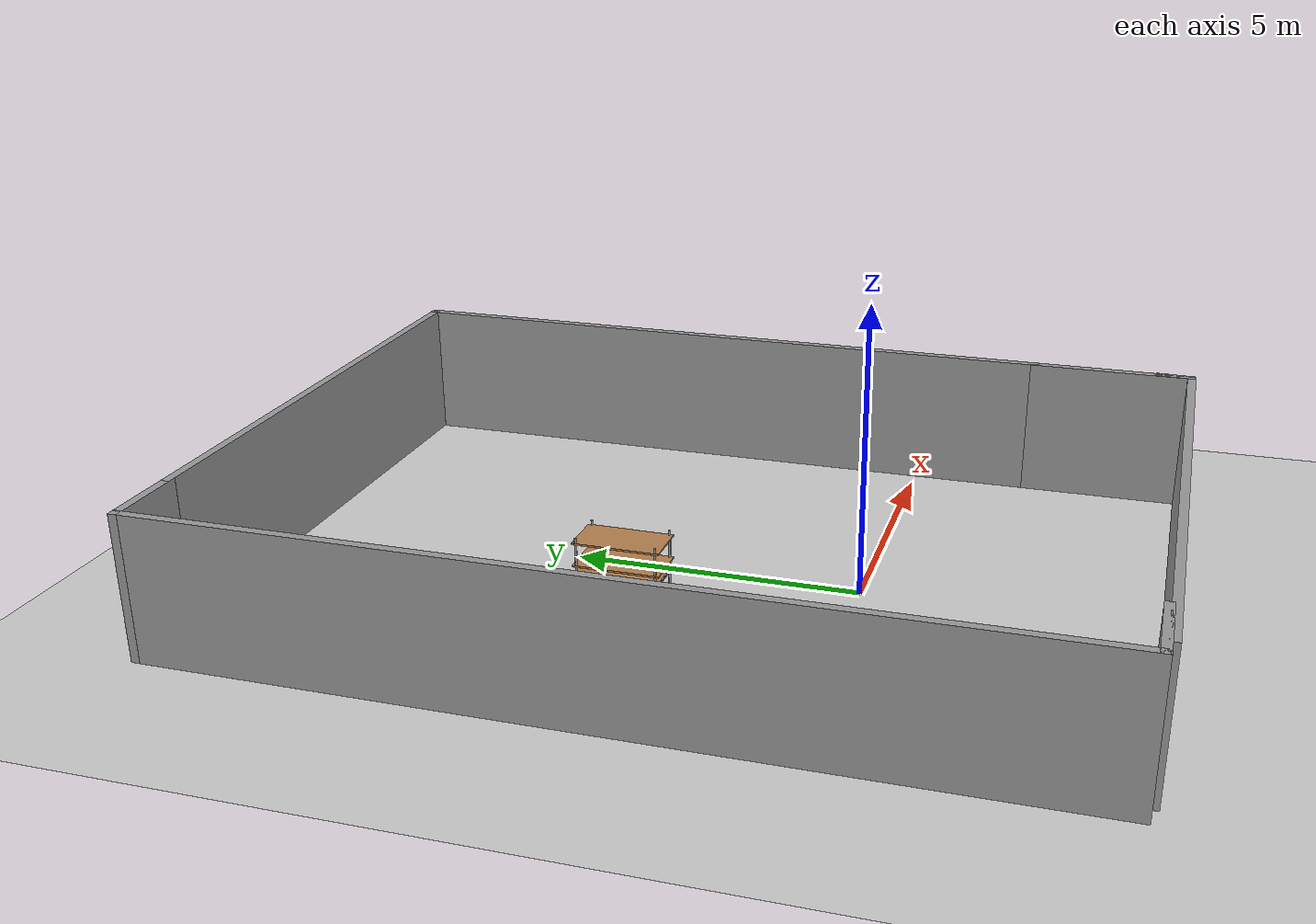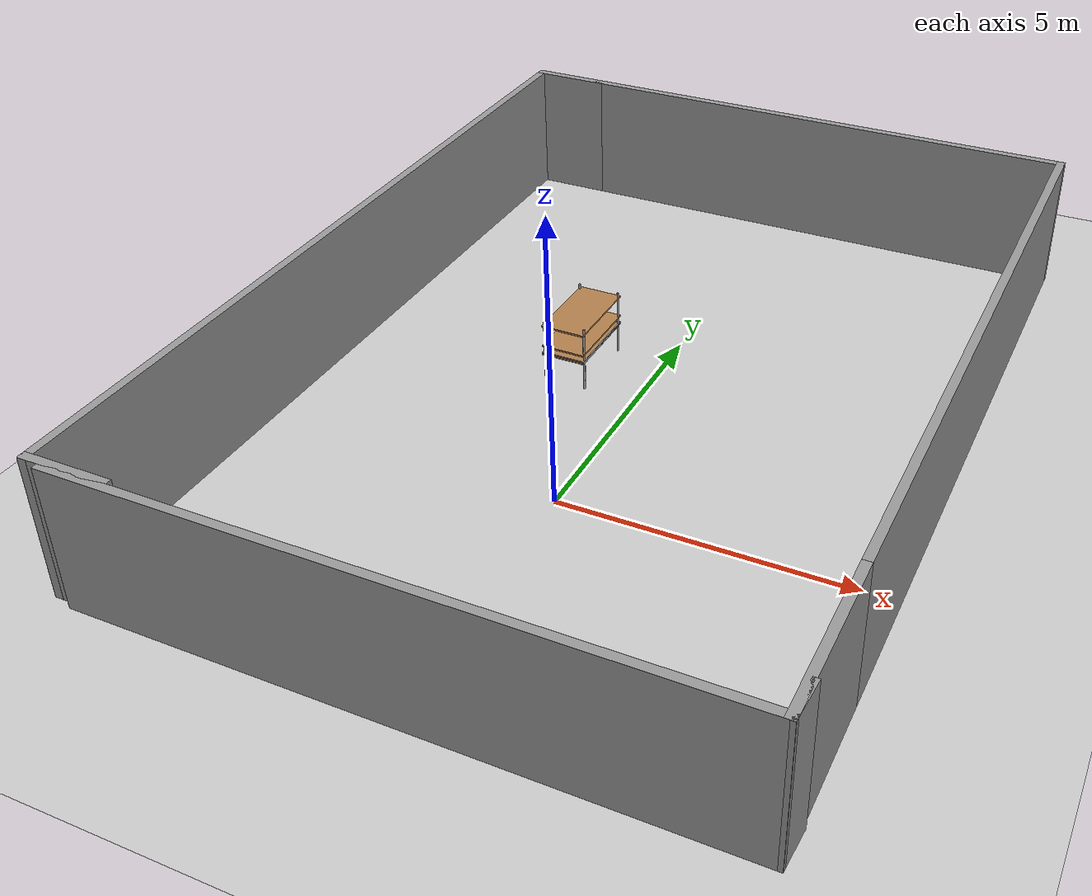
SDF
<sdf version="1.7">
 <world name="default">
  <model name="ground_plane">
   <static>1</static>
   <link name="link">
    <collision name="collision">
     <geometry><plane><normal>0 0 1</normal><size>100 100</size></plane></geometry>
     <surface><friction><ode><mu>100</mu><mu2>50</mu2></ode></friction></surface>
    </collision>
    <visual name="visual">
     <cast_shadows>0</cast_shadows>
     <geometry><plane><normal>0 0 1</normal><size>100 100</size></plane></geometry>
     <material>
      <script><uri>file://media/materials/scripts/gazebo.material</uri><name>Gazebo/Grey</name></script>
     </material>
    </visual>
   </link>
  </model>
  <model name="warehouse_pallet_clone_0_clone_0">
   <link name="warehouse_pallet::link">
    <pose>0 0 -0 0 -0 1.57</pose>
    <inertial>
     <inertia>
      <ixx>0.0267042</ixx>
      <ixy>0</ixy>
      <ixz>0</ixz>
      <iyy>0.0937875</iyy>
      <iyz>0</iyz>
      <izz>0.120417</izz>
     </inertia>
     <mass>0.5</mass>
    </inertial>
    <visual name="holding1_visual">
     <pose>0 0.39 0.45 0 -0 0</pose>
     <geometry><box><size>1.5 0.02 0.05</size></box></geometry>
     <material>
      <script><uri>file://media/materials/scripts/gazebo.material</uri><name>Gazebo/Grey</name></script>
      <shader type="pixel"><normal_map>__default__</normal_map></shader>
      <ambient>0.3 0.3 0.3 1</ambient>
      <diffuse>0.7 0.7 0.7 1</diffuse>
      <specular>0.01 0.01 0.01 1</specular>
      <emissive>0 0 0 1</emissive>
     </material>
    </visual>
    <visual name="front_left_leg">
     <pose>0.68 0.38 0.5 0 -0 0</pose>
     <geometry><cylinder><radius>0.02</radius><length>1.2</length></cylinder></geometry>
     <material>
      <script><uri>file://media/materials/scripts/gazebo.material</uri><name>Gazebo/Grey</name></script>
      <shader type="pixel"><normal_map>__default__</normal_map></shader>
      <ambient>0.3 0.3 0.3 1</ambient>
      <diffuse>0.7 0.7 0.7 1</diffuse>
      <specular>0.01 0.01 0.01 1</specular>
      <emissive>0 0 0 1</emissive>
     </material>
    </visual>
    <visual name="front_right_leg">
     <pose>0.68 -0.38 0.5 0 -0 0</pose>
     <geometry><cylinder><radius>0.02</radius><length>1.2</length></cylinder></geometry>
     <material>
      <script><uri>file://media/materials/scripts/gazebo.material</uri><name>Gazebo/Grey</name></script>
      <shader type="pixel"><normal_map>__default__</normal_map></shader>
      <ambient>0.3 0.3 0.3 1</ambient>
      <diffuse>0.7 0.7 0.7 1</diffuse>
      <specular>0.01 0.01 0.01 1</specular>
      <emissive>0 0 0 1</emissive>
     </material>
    </visual>
    <visual name="back_right_leg">
     <pose>-0.68 -0.38 0.5 0 -0 0</pose>
     <geometry><cylinder><radius>0.02</radius><length>1.2</length></cylinder></geometry>
     <material>
      <script><uri>file://media/materials/scripts/gazebo.material</uri><name>Gazebo/Grey</name></script>
      <shader type="pixel"><normal_map>__default__</normal_map></shader>
      <ambient>0.3 0.3 0.3 1</ambient>
      <diffuse>0.7 0.7 0.7 1</diffuse>
      <specular>0.01 0.01 0.01 1</specular>
      <emissive>0 0 0 1</emissive>
     </material>
    </visual>
    <visual name="back_left_leg">
     <pose>-0.68 0.38 0.5 0 -0 0</pose>
     <geometry><cylinder><radius>0.02</radius><length>1.2</length></cylinder></geometry>
     <material>
      <script><uri>file://media/materials/scripts/gazebo.material</uri><name>Gazebo/Grey</name></script>
      <shader type="pixel"><normal_map>__default__</normal_map></shader>
      <ambient>0.3 0.3 0.3 1</ambient>
      <diffuse>0.7 0.7 0.7 1</diffuse>
      <specular>0.01 0.01 0.01 1</specular>
      <emissive>0 0 0 1</emissive>
     </material>
    </visual>
    <visual name="visual1">
     <pose>0 0 0.45 0 -0 0</pose>
     <geometry><box><size>1.5 0.8 0.03</size></box></geometry>
     <material>
      <script><uri>file://media/materials/scripts/gazebo.material</uri><name>Gazebo/Wood</name></script>
      <shader type="pixel"><normal_map>__default__</normal_map></shader>
      <ambient>1 1 1 1</ambient>
      <diffuse>1 1 1 1</diffuse>
      <specular>0.2 0.2 0.2 1</specular>
      <emissive>0 0 0 1</emissive>
     </material>
    </visual>
    <visual name="holding2_visual">
     <pose>0 -0.39 0.45 0 -0 0</pose>
     <geometry><box><size>1.5 0.02 0.05</size></box></geometry>
     <material>
      <script><uri>file://media/materials/scripts/gazebo.material</uri><name>Gazebo/Grey</name></script>
      <shader type="pixel"><normal_map>__default__</normal_map></shader>
      <ambient>0.3 0.3 0.3 1</ambient>
      <diffuse>0.7 0.7 0.7 1</diffuse>
      <specular>0.01 0.01 0.01 1</specular>
      <emissive>0 0 0 1</emissive>
     </material>
    </visual>
    <visual name="holding3_visual">
     <pose>0.735 0 0.45 0 -0 1.57</pose>
     <geometry><box><size>0.8 0.02 0.05</size></box></geometry>
     <material>
      <script><uri>file://media/materials/scripts/gazebo.material</uri><name>Gazebo/Grey</name></script>
      <shader type="pixel"><normal_map>__default__</normal_map></shader>
      <ambient>0.3 0.3 0.3 1</ambient>
      <diffuse>0.7 0.7 0.7 1</diffuse>
      <specular>0.01 0.01 0.01 1</specular>
      <emissive>0 0 0 1</emissive>
     </material>
    </visual>
    <visual name="holding4_visual">
     <pose>-0.735 0 0.45 0 -0 1.57</pose>
     <geometry><box><size>0.8 0.02 0.05</size></box></geometry>
     <material>
      <script><uri>file://media/materials/scripts/gazebo.material</uri><name>Gazebo/Grey</name></script>
      <shader type="pixel"><normal_map>__default__</normal_map></shader>
      <ambient>0.3 0.3 0.3 1</ambient>
      <diffuse>0.7 0.7 0.7 1</diffuse>
      <specular>0.01 0.01 0.01 1</specular>
      <emissive>0 0 0 1</emissive>
     </material>
    </visual>
    <visual name="visual2">
     <pose>0 0 0.6 0 -0 0</pose>
     <geometry><box><size>1.5 0.8 0.03</size></box></geometry>
     <material>
      <script><uri>file://media/materials/scripts/gazebo.material</uri><name>Gazebo/Wood</name></script>
      <shader type="pixel"><normal_map>__default__</normal_map></shader>
      <ambient>1 1 1 1</ambient>
      <diffuse>1 1 1 1</diffuse>
      <specular>0.2 0.2 0.2 1</specular>
      <emissive>0 0 0 1</emissive>
     </material>
    </visual>
    <visual name="visual3">
     <pose>0 0 1 0 -0 0</pose>
     <geometry><box><size>1.5 0.8 0.03</size></box></geometry>
     <material>
      <script><uri>file://media/materials/scripts/gazebo.material</uri><name>Gazebo/Wood</name></script>
      <shader type="pixel"><normal_map>__default__</normal_map></shader>
      <ambient>1 1 1 1</ambient>
      <diffuse>1 1 1 1</diffuse>
      <specular>0.2 0.2 0.2 1</specular>
      <emissive>0 0 0 1</emissive>
     </material>
    </visual>
    <collision name="surface1">
     <pose>0 0 0.45 0 -0 0</pose>
     <geometry><box><size>1.5 0.8 0.03</size></box></geometry>
     <surface>
      <friction>
       <ode><mu>20</mu><mu2>20</mu2><fdir1>0 0 0</fdir1><slip1>0</slip1><slip2>0</slip2></ode>
       <torsional>
        <coefficient>1</coefficient>
        <patch_radius>0</patch_radius>
        <surface_radius>0</surface_radius>
        <use_patch_radius>1</use_patch_radius>
        <ode><slip>0</slip></ode>
       </torsional>
      </friction>
      <bounce><restitution_coefficient>0</restitution_coefficient><threshold>1e+06</threshold></bounce>
      <contact>
       <collide_without_contact>0</collide_without_contact>
       <collide_without_contact_bitmask>1</collide_without_contact_bitmask>
       <collide_bitmask>1</collide_bitmask>
       <ode>
        <soft_cfm>0</soft_cfm>
        <soft_erp>0.2</soft_erp>
        <kp>1e+13</kp>
        <kd>1</kd>
        <max_vel>0.01</max_vel>
        <min_depth>0</min_depth>
       </ode>
       <bullet>
        <split_impulse>1</split_impulse>
        <split_impulse_penetration_threshold>-0.01</split_impulse_penetration_threshold>
        <soft_cfm>0</soft_cfm>
        <soft_erp>0.2</soft_erp>
        <kp>1e+13</kp>
        <kd>1</kd>
       </bullet>
      </contact>
     </surface>
    </collision>
    <collision name="holding1_collision">
     <pose>0 0.39 0.45 0 -0 0</pose>
     <geometry><box><size>1.5 0.02 0.05</size></box></geometry>
     <surface>
      <friction>
       <ode><mu>1e+09</mu><mu2>1e+09</mu2><fdir1>0 0 0</fdir1><slip1>0</slip1><slip2>0</slip2></ode>
       <torsional>
        <coefficient>1</coefficient>
        <patch_radius>0</patch_radius>
        <surface_radius>0</surface_radius>
        <use_patch_radius>1</use_patch_radius>
        <ode><slip>0</slip></ode>
       </torsional>
      </friction>
      <bounce><restitution_coefficient>0</restitution_coefficient><threshold>1e+06</threshold></bounce>
      <contact>
       <collide_without_contact>0</collide_without_contact>
       <collide_without_contact_bitmask>1</collide_without_contact_bitmask>
       <collide_bitmask>1</collide_bitmask>
       <ode>
        <soft_cfm>0</soft_cfm>
        <soft_erp>0.2</soft_erp>
        <kp>1e+13</kp>
        <kd>1</kd>
        <max_vel>0.01</max_vel>
        <min_depth>0</min_depth>
       </ode>
       <bullet>
        <split_impulse>1</split_impulse>
        <split_impulse_penetration_threshold>-0.01</split_impulse_penetration_threshold>
        <soft_cfm>0</soft_cfm>
        <soft_erp>0.2</soft_erp>
        <kp>1e+13</kp>
        <kd>1</kd>
       </bullet>
      </contact>
     </surface>
    </collision>
    <collision name="holding2_collision">
     <pose>0 -0.39 0.45 0 -0 0</pose>
     <geometry><box><size>1.5 0.02 0.05</size></box></geometry>
     <surface>
      <friction>
       <ode><mu>1e+09</mu><mu2>1e+09</mu2><fdir1>0 0 0</fdir1><slip1>0</slip1><slip2>0</slip2></ode>
       <torsional>
        <coefficient>1</coefficient>
        <patch_radius>0</patch_radius>
        <surface_radius>0</surface_radius>
        <use_patch_radius>1</use_patch_radius>
        <ode><slip>0</slip></ode>
       </torsional>
      </friction>
      <bounce><restitution_coefficient>0</restitution_coefficient><threshold>1e+06</threshold></bounce>
      <contact>
       <collide_without_contact>0</collide_without_contact>
       <collide_without_contact_bitmask>1</collide_without_contact_bitmask>
       <collide_bitmask>1</collide_bitmask>
       <ode>
        <soft_cfm>0</soft_cfm>
        <soft_erp>0.2</soft_erp>
        <kp>1e+13</kp>
        <kd>1</kd>
        <max_vel>0.01</max_vel>
        <min_depth>0</min_depth>
       </ode>
       <bullet>
        <split_impulse>1</split_impulse>
        <split_impulse_penetration_threshold>-0.01</split_impulse_penetration_threshold>
        <soft_cfm>0</soft_cfm>
        <soft_erp>0.2</soft_erp>
        <kp>1e+13</kp>
        <kd>1</kd>
       </bullet>
      </contact>
     </surface>
    </collision>
    <collision name="holding3_collision">
     <pose>0.735 0 0.45 0 -0 1.57</pose>
     <geometry><box><size>0.8 0.02 0.05</size></box></geometry>
     <surface>
      <friction>
       <ode><mu>1e+09</mu><mu2>1e+09</mu2><fdir1>0 0 0</fdir1><slip1>0</slip1><slip2>0</slip2></ode>
       <torsional>
        <coefficient>1</coefficient>
        <patch_radius>0</patch_radius>
        <surface_radius>0</surface_radius>
        <use_patch_radius>1</use_patch_radius>
        <ode><slip>0</slip></ode>
       </torsional>
      </friction>
      <bounce><restitution_coefficient>0</restitution_coefficient><threshold>1e+06</threshold></bounce>
      <contact>
       <collide_without_contact>0</collide_without_contact>
       <collide_without_contact_bitmask>1</collide_without_contact_bitmask>
       <collide_bitmask>1</collide_bitmask>
       <ode>
        <soft_cfm>0</soft_cfm>
        <soft_erp>0.2</soft_erp>
        <kp>1e+13</kp>
        <kd>1</kd>
        <max_vel>0.01</max_vel>
        <min_depth>0</min_depth>
       </ode>
       <bullet>
        <split_impulse>1</split_impulse>
        <split_impulse_penetration_threshold>-0.01</split_impulse_penetration_threshold>
        <soft_cfm>0</soft_cfm>
        <soft_erp>0.2</soft_erp>
        <kp>1e+13</kp>
        <kd>1</kd>
       </bullet>
      </contact>
     </surface>
    </collision>
    <collision name="holding4_collision">
     <pose>-0.735 0 0.45 0 -0 1.57</pose>
     <geometry><box><size>0.8 0.02 0.05</size></box></geometry>
     <surface>
      <friction>
       <ode><mu>1e+09</mu><mu2>1e+09</mu2><fdir1>0 0 0</fdir1><slip1>0</slip1><slip2>0</slip2></ode>
       <torsional>
        <coefficient>1</coefficient>
        <patch_radius>0</patch_radius>
        <surface_radius>0</surface_radius>
        <use_patch_radius>1</use_patch_radius>
        <ode><slip>0</slip></ode>
       </torsional>
      </friction>
      <bounce><restitution_coefficient>0</restitution_coefficient><threshold>1e+06</threshold></bounce>
      <contact>
       <collide_without_contact>0</collide_without_contact>
       <collide_without_contact_bitmask>1</collide_without_contact_bitmask>
       <collide_bitmask>1</collide_bitmask>
       <ode>
        <soft_cfm>0</soft_cfm>
        <soft_erp>0.2</soft_erp>
        <kp>1e+13</kp>
        <kd>1</kd>
        <max_vel>0.01</max_vel>
        <min_depth>0</min_depth>
       </ode>
       <bullet>
        <split_impulse>1</split_impulse>
        <split_impulse_penetration_threshold>-0.01</split_impulse_penetration_threshold>
        <soft_cfm>0</soft_cfm>
        <soft_erp>0.2</soft_erp>
        <kp>1e+13</kp>
        <kd>1</kd>
       </bullet>
      </contact>
     </surface>
    </collision>
    <collision name="surface3">
     <pose>0 0 1 0 -0 0</pose>
     <geometry><box><size>1.5 0.8 0.03</size></box></geometry>
     <surface>
      <friction>
       <ode><mu>2.5</mu><mu2>2.5</mu2><fdir1>0 0 0</fdir1><slip1>0</slip1><slip2>0</slip2></ode>
       <torsional>
        <coefficient>1</coefficient>
        <patch_radius>0</patch_radius>
        <surface_radius>0</surface_radius>
        <use_patch_radius>1</use_patch_radius>
        <ode><slip>0</slip></ode>
       </torsional>
      </friction>
      <bounce><restitution_coefficient>0</restitution_coefficient><threshold>1e+06</threshold></bounce>
      <contact>
       <collide_without_contact>0</collide_without_contact>
       <collide_without_contact_bitmask>1</collide_without_contact_bitmask>
       <collide_bitmask>1</collide_bitmask>
       <ode>
        <soft_cfm>0</soft_cfm>
        <soft_erp>0.2</soft_erp>
        <kp>1e+13</kp>
        <kd>1</kd>
        <max_vel>0.01</max_vel>
        <min_depth>0</min_depth>
       </ode>
       <bullet>
        <split_impulse>1</split_impulse>
        <split_impulse_penetration_threshold>-0.01</split_impulse_penetration_threshold>
        <soft_cfm>0</soft_cfm>
        <soft_erp>0.2</soft_erp>
        <kp>1e+13</kp>
        <kd>1</kd>
       </bullet>
      </contact>
     </surface>
    </collision>
    <collision name="surface2">
     <pose>0 0 0.6 0 -0 0</pose>
     <geometry><box><size>1.5 0.8 0.03</size></box></geometry>
     <surface>
      <friction>
       <ode><mu>2.5</mu><mu2>2.5</mu2><fdir1>0 0 0</fdir1><slip1>0</slip1><slip2>0</slip2></ode>
       <torsional>
        <coefficient>1</coefficient>
        <patch_radius>0</patch_radius>
        <surface_radius>0</surface_radius>
        <use_patch_radius>1</use_patch_radius>
        <ode><slip>0</slip></ode>
       </torsional>
      </friction>
      <bounce><restitution_coefficient>0</restitution_coefficient><threshold>1e+06</threshold></bounce>
      <contact>
       <collide_without_contact>0</collide_without_contact>
       <collide_without_contact_bitmask>1</collide_without_contact_bitmask>
       <collide_bitmask>1</collide_bitmask>
       <ode>
        <soft_cfm>0</soft_cfm>
        <soft_erp>0.2</soft_erp>
        <kp>1e+13</kp>
        <kd>1</kd>
        <max_vel>0.01</max_vel>
        <min_depth>0</min_depth>
       </ode>
       <bullet>
        <split_impulse>1</split_impulse>
        <split_impulse_penetration_threshold>-0.01</split_impulse_penetration_threshold>
        <soft_cfm>0</soft_cfm>
        <soft_erp>0.2</soft_erp>
        <kp>1e+13</kp>
        <kd>1</kd>
       </bullet>
      </contact>
     </surface>
    </collision>
    <collision name="front_right_leg">
     <pose>0.68 -0.38 0.5 0 -0 0</pose>
     <geometry><cylinder><radius>0.02</radius><length>1</length></cylinder></geometry>
     <surface>
      <friction>
       <ode><mu>1</mu><mu2>1.2</mu2><fdir1>0 0 0</fdir1><slip1>0</slip1><slip2>0</slip2></ode>
       <torsional>
        <coefficient>1</coefficient>
        <patch_radius>0</patch_radius>
        <surface_radius>0</surface_radius>
        <use_patch_radius>1</use_patch_radius>
        <ode><slip>0</slip></ode>
       </torsional>
      </friction>
      <bounce><restitution_coefficient>0</restitution_coefficient><threshold>1e+06</threshold></bounce>
      <contact>
       <collide_without_contact>0</collide_without_contact>
       <collide_without_contact_bitmask>1</collide_without_contact_bitmask>
       <collide_bitmask>1</collide_bitmask>
       <ode>
        <soft_cfm>0</soft_cfm>
        <soft_erp>0.2</soft_erp>
        <kp>1e+13</kp>
        <kd>1</kd>
        <max_vel>0.01</max_vel>
        <min_depth>0</min_depth>
       </ode>
       <bullet>
        <split_impulse>1</split_impulse>
        <split_impulse_penetration_threshold>-0.01</split_impulse_penetration_threshold>
        <soft_cfm>0</soft_cfm>
        <soft_erp>0.2</soft_erp>
        <kp>1e+13</kp>
        <kd>1</kd>
       </bullet>
      </contact>
     </surface>
    </collision>
    <collision name="back_right_leg">
     <pose>-0.68 -0.38 0.5 0 -0 0</pose>
     <geometry><cylinder><radius>0.02</radius><length>1.2</length></cylinder></geometry>
     <surface>
      <friction>
       <ode><mu>1</mu><mu2>1</mu2><fdir1>0 0 0</fdir1><slip1>0</slip1><slip2>0</slip2></ode>
       <torsional>
        <coefficient>1</coefficient>
        <patch_radius>0</patch_radius>
        <surface_radius>0</surface_radius>
        <use_patch_radius>1</use_patch_radius>
        <ode><slip>0</slip></ode>
       </torsional>
      </friction>
      <bounce><restitution_coefficient>0</restitution_coefficient><threshold>1e+06</threshold></bounce>
      <contact>
       <collide_without_contact>0</collide_without_contact>
       <collide_without_contact_bitmask>1</collide_without_contact_bitmask>
       <collide_bitmask>1</collide_bitmask>
       <ode>
        <soft_cfm>0</soft_cfm>
        <soft_erp>0.2</soft_erp>
        <kp>1e+13</kp>
        <kd>1</kd>
        <max_vel>0.01</max_vel>
        <min_depth>0</min_depth>
       </ode>
       <bullet>
        <split_impulse>1</split_impulse>
        <split_impulse_penetration_threshold>-0.01</split_impulse_penetration_threshold>
        <soft_cfm>0</soft_cfm>
        <soft_erp>0.2</soft_erp>
        <kp>1e+13</kp>
        <kd>1</kd>
       </bullet>
      </contact>
     </surface>
    </collision>
    <collision name="front_left_leg">
     <pose>0.68 0.38 0.5 0 -0 0</pose>
     <geometry><cylinder><radius>0.02</radius><length>1.2</length></cylinder></geometry>
     <surface>
      <friction>
       <ode><mu>1</mu><mu2>1</mu2><fdir1>0 0 0</fdir1><slip1>0</slip1><slip2>0</slip2></ode>
       <torsional>
        <coefficient>1</coefficient>
        <patch_radius>0</patch_radius>
        <surface_radius>0</surface_radius>
        <use_patch_radius>1</use_patch_radius>
        <ode><slip>0</slip></ode>
       </torsional>
      </friction>
      <bounce><restitution_coefficient>0</restitution_coefficient><threshold>1e+06</threshold></bounce>
      <contact>
       <collide_without_contact>0</collide_without_contact>
       <collide_without_contact_bitmask>1</collide_without_contact_bitmask>
       <collide_bitmask>1</collide_bitmask>
       <ode>
        <soft_cfm>0</soft_cfm>
        <soft_erp>0.2</soft_erp>
        <kp>1e+13</kp>
        <kd>1</kd>
        <max_vel>0.01</max_vel>
        <min_depth>0</min_depth>
       </ode>
       <bullet>
        <split_impulse>1</split_impulse>
        <split_impulse_penetration_threshold>-0.01</split_impulse_penetration_threshold>
        <soft_cfm>0</soft_cfm>
        <soft_erp>0.2</soft_erp>
        <kp>1e+13</kp>
        <kd>1</kd>
       </bullet>
      </contact>
     </surface>
    </collision>
    <collision name="back_left_leg">
     <pose>-0.68 0.38 0.5 0 -0 0</pose>
     <geometry><cylinder><radius>0.02</radius><length>1.2</length></cylinder></geometry>
     <surface>
      <friction>
       <ode><mu>1</mu><mu2>1</mu2><fdir1>0 0 0</fdir1><slip1>0</slip1><slip2>0</slip2></ode>
       <torsional>
        <coefficient>1</coefficient>
        <patch_radius>0</patch_radius>
        <surface_radius>0</surface_radius>
        <use_patch_radius>1</use_patch_radius>
        <ode><slip>0</slip></ode>
       </torsional>
      </friction>
      <bounce><restitution_coefficient>0</restitution_coefficient><threshold>1e+06</threshold></bounce>
      <contact>
       <collide_without_contact>0</collide_without_contact>
       <collide_without_contact_bitmask>1</collide_without_contact_bitmask>
       <collide_bitmask>1</collide_bitmask>
       <ode>
        <soft_cfm>0</soft_cfm>
        <soft_erp>0.2</soft_erp>
        <kp>1e+13</kp>
        <kd>1</kd>
        <max_vel>0.01</max_vel>
        <min_depth>0</min_depth>
       </ode>
       <bullet>
        <split_impulse>1</split_impulse>
        <split_impulse_penetration_threshold>-0.01</split_impulse_penetration_threshold>
        <soft_cfm>0</soft_cfm>
        <soft_erp>0.2</soft_erp>
        <kp>1e+13</kp>
        <kd>1</kd>
       </bullet>
      </contact>
     </surface>
    </collision>
   </link>
   <static>0</static>
   <pose>-1.34663 3.71211 0.099998 -8e-06 1.5e-05 -0.006572</pose>
  </model>
  <model name="Untitled">
   <pose>0.041333 2.61104 0 0 -0 0</pose>
   <link name="Wall_10">
    <collision name="Wall_10_Collision">
     <geometry><box><size>15.25 0.15 2.5</size></box></geometry>
     <pose>0 0 1.25 0 -0 0</pose>
    </collision>
    <visual name="Wall_10_Visual">
     <pose>0 0 1.25 0 -0 0</pose>
     <geometry><box><size>15.25 0.15 2.5</size></box></geometry>
     <material>
      <script><uri>file://media/materials/scripts/gazebo.material</uri><name>Gazebo/Grey</name></script>
      <ambient>1 1 1 1</ambient>
     </material>
     <meta><layer>0</layer></meta>
    </visual>
    <pose>-5.49267 0.052006 0 0 -0 -1.5708</pose>
   </link>
   <link name="Wall_11">
    <collision name="Wall_11_Collision">
     <geometry><box><size>0.15 0.15 2.5</size></box></geometry>
     <pose>0 0 1.25 0 -0 0</pose>
    </collision>
    <visual name="Wall_11_Visual">
     <pose>0 0 1.25 0 -0 0</pose>
     <geometry><box><size>0.15 0.15 2.5</size></box></geometry>
     <material>
      <script><uri>file://media/materials/scripts/gazebo.material</uri><name>Gazebo/Grey</name></script>
      <ambient>1 1 1 1</ambient>
     </material>
     <meta><layer>0</layer></meta>
    </visual>
    <pose>-5.49267 -7.49799 0 0 -0 0</pose>
   </link>
   <link name="Wall_12">
    <collision name="Wall_12_Collision">
     <geometry><box><size>1.5 0.15 2.5</size></box></geometry>
     <pose>0 0 1.25 0 -0 0</pose>
    </collision>
    <visual name="Wall_12_Visual">
     <pose>0 0 1.25 0 -0 0</pose>
     <geometry><box><size>1.5 0.15 2.5</size></box></geometry>
     <material>
      <script><uri>file://media/materials/scripts/gazebo.material</uri><name>Gazebo/Grey</name></script>
      <ambient>1 1 1 1</ambient>
     </material>
     <meta><layer>0</layer></meta>
    </visual>
    <pose>-4.81767 -7.49799 0 0 -0 0</pose>
   </link>
   <link name="Wall_3">
    <collision name="Wall_3_Collision">
     <geometry><box><size>10.75 0.15 2.5</size></box></geometry>
     <pose>0 0 1.25 0 -0 0</pose>
    </collision>
    <visual name="Wall_3_Visual">
     <pose>0 0 1.25 0 -0 0</pose>
     <geometry><box><size>10.75 0.15 2.5</size></box></geometry>
     <material>
      <script><uri>file://media/materials/scripts/gazebo.material</uri><name>Gazebo/Grey</name></script>
      <ambient>1 1 1 1</ambient>
     </material>
     <meta><layer>0</layer></meta>
    </visual>
    <pose>0.157334 -7.59799 0 0 -0 3.14159</pose>
   </link>
   <link name="Wall_5">
    <collision name="Wall_5_Collision">
     <geometry><box><size>0.719229 0.15 2.5</size></box></geometry>
     <pose>0 0 1.25 0 -0 0</pose>
    </collision>
    <visual name="Wall_5_Visual">
     <pose>0 0 1.25 0 -0 0</pose>
     <geometry><box><size>0.719229 0.15 2.5</size></box></geometry>
     <material>
      <script><uri>file://media/materials/scripts/gazebo.material</uri><name>Gazebo/Grey</name></script>
      <ambient>1 1 1 1</ambient>
     </material>
     <meta><layer>0</layer></meta>
    </visual>
    <pose>5.47299 -7.31381 0 0 -0 -1.62584</pose>
   </link>
   <link name="Wall_6">
    <collision name="Wall_6_Collision">
     <geometry><box><size>3 0.15 2.5</size></box></geometry>
     <pose>0 0 1.25 0 -0 0</pose>
    </collision>
    <visual name="Wall_6_Visual">
     <pose>0 0 1.25 0 -0 0</pose>
     <geometry><box><size>3 0.15 2.5</size></box></geometry>
     <material>
      <script><uri>file://media/materials/scripts/gazebo.material</uri><name>Gazebo/Grey</name></script>
      <ambient>1 1 1 1</ambient>
     </material>
     <meta><layer>0</layer></meta>
    </visual>
    <pose>5.45733 -6.17299 0 0 -0 1.5708</pose>
   </link>
   <link name="Wall_7">
    <collision name="Wall_7_Collision">
     <geometry><box><size>12.5 0.15 2.5</size></box></geometry>
     <pose>0 0 1.25 0 -0 0</pose>
    </collision>
    <visual name="Wall_7_Visual">
     <pose>0 0 1.25 0 -0 0</pose>
     <geometry><box><size>12.5 0.15 2.5</size></box></geometry>
     <material>
      <script><uri>file://media/materials/scripts/gazebo.material</uri><name>Gazebo/Grey</name></script>
      <ambient>1 1 1 1</ambient>
     </material>
     <meta><layer>0</layer></meta>
    </visual>
    <pose>5.45733 1.42701 0 0 -0 1.5708</pose>
   </link>
   <link name="Wall_8">
    <collision name="Wall_8_Collision">
     <geometry><box><size>9.75 0.15 2.5</size></box></geometry>
     <pose>0 0 1.25 0 -0 0</pose>
    </collision>
    <visual name="Wall_8_Visual">
     <pose>0 0 1.25 0 -0 0</pose>
     <geometry><box><size>9.75 0.15 2.5</size></box></geometry>
     <material>
      <script><uri>file://media/materials/scripts/gazebo.material</uri><name>Gazebo/Grey</name></script>
      <ambient>1 1 1 1</ambient>
     </material>
     <meta><layer>0</layer></meta>
    </visual>
    <pose>0.657334 7.60201 0 0 -0 3.14159</pose>
   </link>
   <link name="Wall_9">
    <collision name="Wall_9_Collision">
     <geometry><box><size>1.5 0.15 2.5</size></box></geometry>
     <pose>0 0 1.25 0 -0 0</pose>
    </collision>
    <visual name="Wall_9_Visual">
     <pose>0 0 1.25 0 -0 0</pose>
     <geometry><box><size>1.5 0.15 2.5</size></box></geometry>
     <material>
      <script><uri>file://media/materials/scripts/gazebo.material</uri><name>Gazebo/Grey</name></script>
      <ambient>1 1 1 1</ambient>
     </material>
     <meta><layer>0</layer></meta>
    </visual>
    <pose>-4.81767 7.60201 0 0 -0 3.14159</pose>
   </link>
   <static>1</static>
  </model>
 </world>
</sdf>
